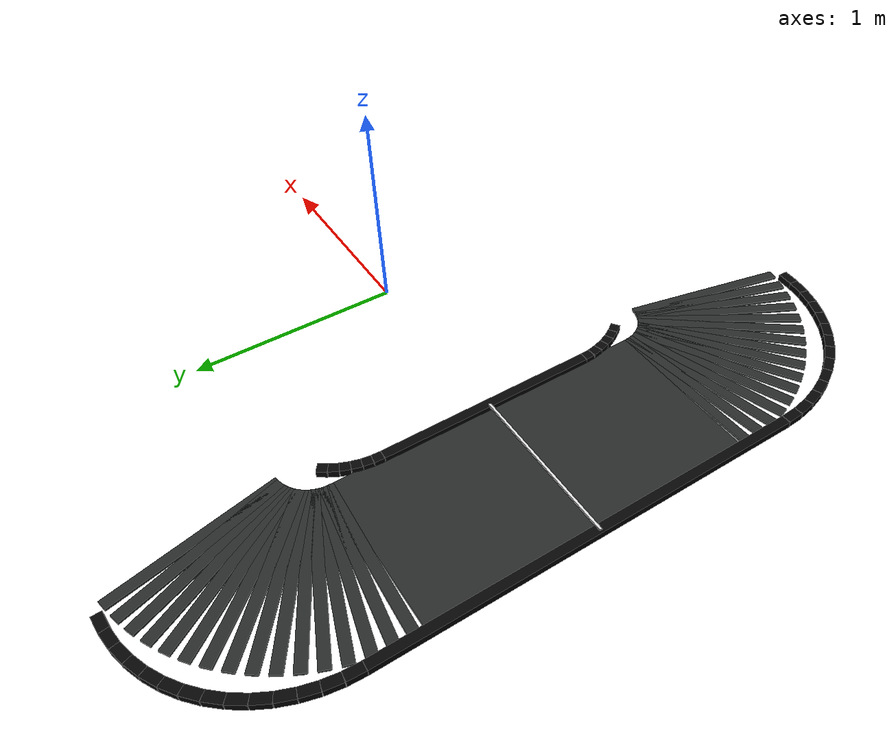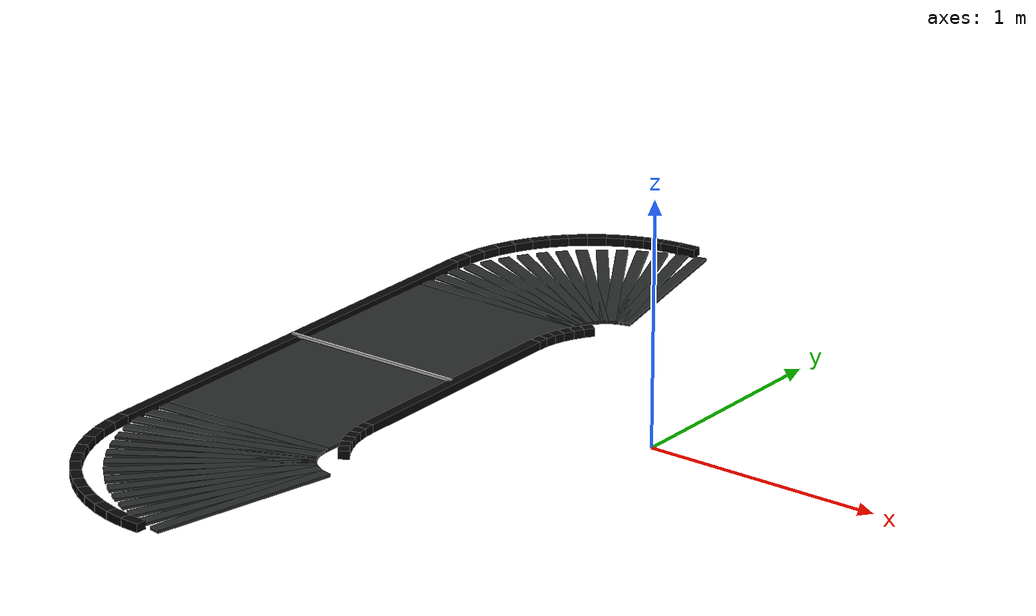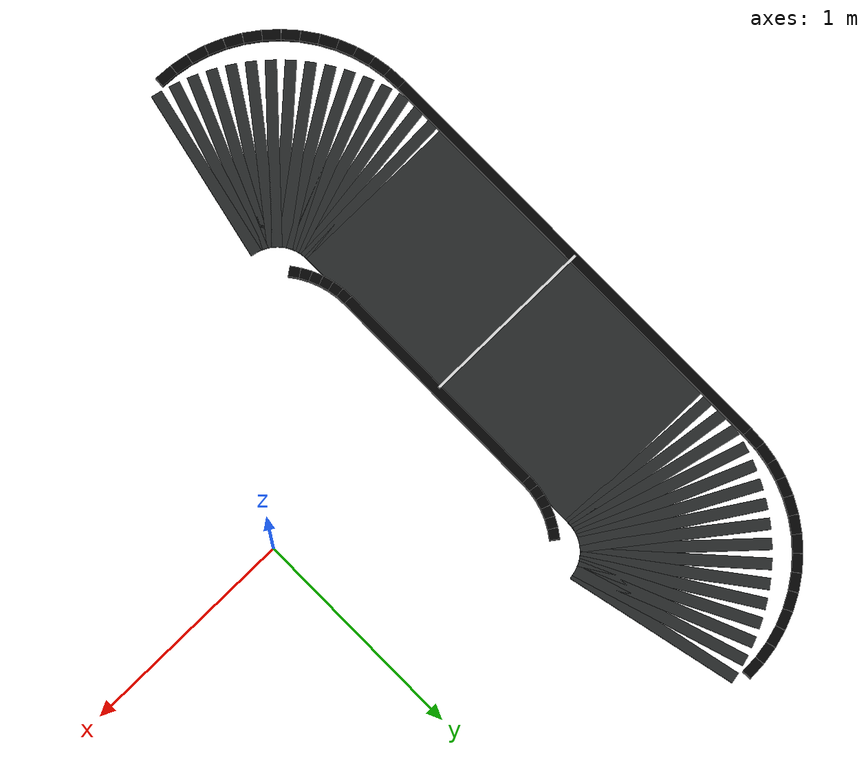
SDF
<sdf version="1.9">
 <world name="safe_city">
  <model name="road_surface_00">
   <static>true</static>
   <pose>-1.3489 -0.8048 0.0060 0 0 -1.52716</pose>
   <link name="link">
    <visual name="visual">
     <geometry><box><size>0.0497 0.8000 0.0120</size></box></geometry>
     <material><ambient>0.15 0.16 0.16 1</ambient><diffuse>0.15 0.16 0.16 1</diffuse></material>
    </visual>
   </link>
  </model>
  <model name="road_surface_01">
   <static>true</static>
   <pose>-1.3446 -0.8543 0.0060 0 0 -1.43990</pose>
   <link name="link">
    <visual name="visual">
     <geometry><box><size>0.0497 0.8000 0.0120</size></box></geometry>
     <material><ambient>0.15 0.16 0.16 1</ambient><diffuse>0.15 0.16 0.16 1</diffuse></material>
    </visual>
   </link>
  </model>
  <model name="road_surface_02">
   <static>true</static>
   <pose>-1.3360 -0.9033 0.0060 0 0 -1.35263</pose>
   <link name="link">
    <visual name="visual">
     <geometry><box><size>0.0497 0.8000 0.0120</size></box></geometry>
     <material><ambient>0.15 0.16 0.16 1</ambient><diffuse>0.15 0.16 0.16 1</diffuse></material>
    </visual>
   </link>
  </model>
  <model name="road_surface_03">
   <static>true</static>
   <pose>-1.3231 -0.9512 0.0060 0 0 -1.26536</pose>
   <link name="link">
    <visual name="visual">
     <geometry><box><size>0.0497 0.8000 0.0120</size></box></geometry>
     <material><ambient>0.15 0.16 0.16 1</ambient><diffuse>0.15 0.16 0.16 1</diffuse></material>
    </visual>
   </link>
  </model>
  <model name="road_surface_04">
   <static>true</static>
   <pose>-1.3061 -0.9979 0.0060 0 0 -1.17810</pose>
   <link name="link">
    <visual name="visual">
     <geometry><box><size>0.0497 0.8000 0.0120</size></box></geometry>
     <material><ambient>0.15 0.16 0.16 1</ambient><diffuse>0.15 0.16 0.16 1</diffuse></material>
    </visual>
   </link>
  </model>
  <model name="road_surface_05">
   <static>true</static>
   <pose>-1.2851 -1.0429 0.0060 0 0 -1.09083</pose>
   <link name="link">
    <visual name="visual">
     <geometry><box><size>0.0497 0.8000 0.0120</size></box></geometry>
     <material><ambient>0.15 0.16 0.16 1</ambient><diffuse>0.15 0.16 0.16 1</diffuse></material>
    </visual>
   </link>
  </model>
  <model name="road_surface_06">
   <static>true</static>
   <pose>-1.2603 -1.0860 0.0060 0 0 -1.00356</pose>
   <link name="link">
    <visual name="visual">
     <geometry><box><size>0.0497 0.8000 0.0120</size></box></geometry>
     <material><ambient>0.15 0.16 0.16 1</ambient><diffuse>0.15 0.16 0.16 1</diffuse></material>
    </visual>
   </link>
  </model>
  <model name="road_surface_07">
   <static>true</static>
   <pose>-1.2318 -1.1267 0.0060 0 0 -0.91630</pose>
   <link name="link">
    <visual name="visual">
     <geometry><box><size>0.0497 0.8000 0.0120</size></box></geometry>
     <material><ambient>0.15 0.16 0.16 1</ambient><diffuse>0.15 0.16 0.16 1</diffuse></material>
    </visual>
   </link>
  </model>
  <model name="road_surface_08">
   <static>true</static>
   <pose>-1.1998 -1.1647 0.0060 0 0 -0.82903</pose>
   <link name="link">
    <visual name="visual">
     <geometry><box><size>0.0497 0.8000 0.0120</size></box></geometry>
     <material><ambient>0.15 0.16 0.16 1</ambient><diffuse>0.15 0.16 0.16 1</diffuse></material>
    </visual>
   </link>
  </model>
  <model name="road_surface_09">
   <static>true</static>
   <pose>-1.1647 -1.1998 0.0060 0 0 -0.74176</pose>
   <link name="link">
    <visual name="visual">
     <geometry><box><size>0.0497 0.8000 0.0120</size></box></geometry>
     <material><ambient>0.15 0.16 0.16 1</ambient><diffuse>0.15 0.16 0.16 1</diffuse></material>
    </visual>
   </link>
  </model>
  <model name="road_surface_10">
   <static>true</static>
   <pose>-1.1267 -1.2318 0.0060 0 0 -0.65450</pose>
   <link name="link">
    <visual name="visual">
     <geometry><box><size>0.0497 0.8000 0.0120</size></box></geometry>
     <material><ambient>0.15 0.16 0.16 1</ambient><diffuse>0.15 0.16 0.16 1</diffuse></material>
    </visual>
   </link>
  </model>
  <model name="road_surface_11">
   <static>true</static>
   <pose>-1.0860 -1.2603 0.0060 0 0 -0.56723</pose>
   <link name="link">
    <visual name="visual">
     <geometry><box><size>0.0497 0.8000 0.0120</size></box></geometry>
     <material><ambient>0.15 0.16 0.16 1</ambient><diffuse>0.15 0.16 0.16 1</diffuse></material>
    </visual>
   </link>
  </model>
  <model name="road_surface_12">
   <static>true</static>
   <pose>-1.0429 -1.2851 0.0060 0 0 -0.47997</pose>
   <link name="link">
    <visual name="visual">
     <geometry><box><size>0.0497 0.8000 0.0120</size></box></geometry>
     <material><ambient>0.15 0.16 0.16 1</ambient><diffuse>0.15 0.16 0.16 1</diffuse></material>
    </visual>
   </link>
  </model>
  <model name="road_surface_13">
   <static>true</static>
   <pose>-0.9979 -1.3061 0.0060 0 0 -0.39270</pose>
   <link name="link">
    <visual name="visual">
     <geometry><box><size>0.0497 0.8000 0.0120</size></box></geometry>
     <material><ambient>0.15 0.16 0.16 1</ambient><diffuse>0.15 0.16 0.16 1</diffuse></material>
    </visual>
   </link>
  </model>
  <model name="road_surface_14">
   <static>true</static>
   <pose>-0.9512 -1.3231 0.0060 0 0 -0.30543</pose>
   <link name="link">
    <visual name="visual">
     <geometry><box><size>0.0497 0.8000 0.0120</size></box></geometry>
     <material><ambient>0.15 0.16 0.16 1</ambient><diffuse>0.15 0.16 0.16 1</diffuse></material>
    </visual>
   </link>
  </model>
  <model name="road_surface_15">
   <static>true</static>
   <pose>-0.9033 -1.3360 0.0060 0 0 -0.21817</pose>
   <link name="link">
    <visual name="visual">
     <geometry><box><size>0.0497 0.8000 0.0120</size></box></geometry>
     <material><ambient>0.15 0.16 0.16 1</ambient><diffuse>0.15 0.16 0.16 1</diffuse></material>
    </visual>
   </link>
  </model>
  <model name="road_surface_59">
   <static>true</static>
   <pose>-0.9033 1.3360 0.0060 0 0 -2.92343</pose>
   <link name="link">
    <visual name="visual">
     <geometry><box><size>0.0497 0.8000 0.0120</size></box></geometry>
     <material><ambient>0.15 0.16 0.16 1</ambient><diffuse>0.15 0.16 0.16 1</diffuse></material>
    </visual>
   </link>
  </model>
  <model name="road_surface_60">
   <static>true</static>
   <pose>-0.9512 1.3231 0.0060 0 0 -2.83616</pose>
   <link name="link">
    <visual name="visual">
     <geometry><box><size>0.0497 0.8000 0.0120</size></box></geometry>
     <material><ambient>0.15 0.16 0.16 1</ambient><diffuse>0.15 0.16 0.16 1</diffuse></material>
    </visual>
   </link>
  </model>
  <model name="road_surface_61">
   <static>true</static>
   <pose>-0.9979 1.3061 0.0060 0 0 -2.74889</pose>
   <link name="link">
    <visual name="visual">
     <geometry><box><size>0.0497 0.8000 0.0120</size></box></geometry>
     <material><ambient>0.15 0.16 0.16 1</ambient><diffuse>0.15 0.16 0.16 1</diffuse></material>
    </visual>
   </link>
  </model>
  <model name="road_surface_62">
   <static>true</static>
   <pose>-1.0429 1.2851 0.0060 0 0 -2.66163</pose>
   <link name="link">
    <visual name="visual">
     <geometry><box><size>0.0497 0.8000 0.0120</size></box></geometry>
     <material><ambient>0.15 0.16 0.16 1</ambient><diffuse>0.15 0.16 0.16 1</diffuse></material>
    </visual>
   </link>
  </model>
  <model name="road_surface_63">
   <static>true</static>
   <pose>-1.0860 1.2603 0.0060 0 0 -2.57436</pose>
   <link name="link">
    <visual name="visual">
     <geometry><box><size>0.0497 0.8000 0.0120</size></box></geometry>
     <material><ambient>0.15 0.16 0.16 1</ambient><diffuse>0.15 0.16 0.16 1</diffuse></material>
    </visual>
   </link>
  </model>
  <model name="road_surface_64">
   <static>true</static>
   <pose>-1.1267 1.2318 0.0060 0 0 -2.48709</pose>
   <link name="link">
    <visual name="visual">
     <geometry><box><size>0.0497 0.8000 0.0120</size></box></geometry>
     <material><ambient>0.15 0.16 0.16 1</ambient><diffuse>0.15 0.16 0.16 1</diffuse></material>
    </visual>
   </link>
  </model>
  <model name="road_surface_65">
   <static>true</static>
   <pose>-1.1647 1.1998 0.0060 0 0 -2.39983</pose>
   <link name="link">
    <visual name="visual">
     <geometry><box><size>0.0497 0.8000 0.0120</size></box></geometry>
     <material><ambient>0.15 0.16 0.16 1</ambient><diffuse>0.15 0.16 0.16 1</diffuse></material>
    </visual>
   </link>
  </model>
  <model name="road_surface_66">
   <static>true</static>
   <pose>-1.1998 1.1647 0.0060 0 0 -2.31256</pose>
   <link name="link">
    <visual name="visual">
     <geometry><box><size>0.0497 0.8000 0.0120</size></box></geometry>
     <material><ambient>0.15 0.16 0.16 1</ambient><diffuse>0.15 0.16 0.16 1</diffuse></material>
    </visual>
   </link>
  </model>
  <model name="road_surface_67">
   <static>true</static>
   <pose>-1.2318 1.1267 0.0060 0 0 -2.22529</pose>
   <link name="link">
    <visual name="visual">
     <geometry><box><size>0.0497 0.8000 0.0120</size></box></geometry>
     <material><ambient>0.15 0.16 0.16 1</ambient><diffuse>0.15 0.16 0.16 1</diffuse></material>
    </visual>
   </link>
  </model>
  <model name="road_surface_68">
   <static>true</static>
   <pose>-1.2603 1.0860 0.0060 0 0 -2.13803</pose>
   <link name="link">
    <visual name="visual">
     <geometry><box><size>0.0497 0.8000 0.0120</size></box></geometry>
     <material><ambient>0.15 0.16 0.16 1</ambient><diffuse>0.15 0.16 0.16 1</diffuse></material>
    </visual>
   </link>
  </model>
  <model name="road_surface_69">
   <static>true</static>
   <pose>-1.2851 1.0429 0.0060 0 0 -2.05076</pose>
   <link name="link">
    <visual name="visual">
     <geometry><box><size>0.0497 0.8000 0.0120</size></box></geometry>
     <material><ambient>0.15 0.16 0.16 1</ambient><diffuse>0.15 0.16 0.16 1</diffuse></material>
    </visual>
   </link>
  </model>
  <model name="road_surface_70">
   <static>true</static>
   <pose>-1.3061 0.9979 0.0060 0 0 -1.96350</pose>
   <link name="link">
    <visual name="visual">
     <geometry><box><size>0.0497 0.8000 0.0120</size></box></geometry>
     <material><ambient>0.15 0.16 0.16 1</ambient><diffuse>0.15 0.16 0.16 1</diffuse></material>
    </visual>
   </link>
  </model>
  <model name="road_surface_71">
   <static>true</static>
   <pose>-1.3231 0.9512 0.0060 0 0 -1.87623</pose>
   <link name="link">
    <visual name="visual">
     <geometry><box><size>0.0497 0.8000 0.0120</size></box></geometry>
     <material><ambient>0.15 0.16 0.16 1</ambient><diffuse>0.15 0.16 0.16 1</diffuse></material>
    </visual>
   </link>
  </model>
  <model name="road_surface_72">
   <static>true</static>
   <pose>-1.3360 0.9033 0.0060 0 0 -1.78896</pose>
   <link name="link">
    <visual name="visual">
     <geometry><box><size>0.0497 0.8000 0.0120</size></box></geometry>
     <material><ambient>0.15 0.16 0.16 1</ambient><diffuse>0.15 0.16 0.16 1</diffuse></material>
    </visual>
   </link>
  </model>
  <model name="road_surface_73">
   <static>true</static>
   <pose>-1.3446 0.8543 0.0060 0 0 -1.70170</pose>
   <link name="link">
    <visual name="visual">
     <geometry><box><size>0.0497 0.8000 0.0120</size></box></geometry>
     <material><ambient>0.15 0.16 0.16 1</ambient><diffuse>0.15 0.16 0.16 1</diffuse></material>
    </visual>
   </link>
  </model>
  <model name="road_surface_74">
   <static>true</static>
   <pose>-1.3489 0.8048 0.0060 0 0 -1.61443</pose>
   <link name="link">
    <visual name="visual">
     <geometry><box><size>0.0497 0.8000 0.0120</size></box></geometry>
     <material><ambient>0.15 0.16 0.16 1</ambient><diffuse>0.15 0.16 0.16 1</diffuse></material>
    </visual>
   </link>
  </model>
  <model name="road_surface_75">
   <static>true</static>
   <pose>-1.3500 0.0000 0.0060 0 0 -1.57080</pose>
   <link name="link">
    <visual name="visual">
     <geometry><box><size>1.5600 0.8000 0.0120</size></box></geometry>
     <material><ambient>0.15 0.16 0.16 1</ambient><diffuse>0.15 0.16 0.16 1</diffuse></material>
    </visual>
   </link>
  </model>
  <model name="outer_black_line_00">
   <static>true</static>
   <pose>-1.7477 -1.0703 0.0175 0 0 -1.51470</pose>
   <link name="link">
    <collision name="collision"><geometry><box><size>0.0807 0.0450 0.0350</size></box></geometry></collision>
    <visual name="visual">
     <geometry><box><size>0.0807 0.0450 0.0350</size></box></geometry>
     <material><ambient>0.02 0.02 0.02 1</ambient><diffuse>0.02 0.02 0.02 1</diffuse></material>
    </visual>
   </link>
  </model>
  <model name="outer_black_line_01">
   <static>true</static>
   <pose>-1.7387 -1.1504 0.0175 0 0 -1.40250</pose>
   <link name="link">
    <collision name="collision"><geometry><box><size>0.0807 0.0450 0.0350</size></box></geometry></collision>
    <visual name="visual">
     <geometry><box><size>0.0807 0.0450 0.0350</size></box></geometry>
     <material><ambient>0.02 0.02 0.02 1</ambient><diffuse>0.02 0.02 0.02 1</diffuse></material>
    </visual>
   </link>
  </model>
  <model name="outer_black_line_02">
   <static>true</static>
   <pose>-1.7208 -1.2290 0.0175 0 0 -1.29030</pose>
   <link name="link">
    <collision name="collision"><geometry><box><size>0.0807 0.0450 0.0350</size></box></geometry></collision>
    <visual name="visual">
     <geometry><box><size>0.0807 0.0450 0.0350</size></box></geometry>
     <material><ambient>0.02 0.02 0.02 1</ambient><diffuse>0.02 0.02 0.02 1</diffuse></material>
    </visual>
   </link>
  </model>
  <model name="outer_black_line_03">
   <static>true</static>
   <pose>-1.6941 -1.3051 0.0175 0 0 -1.17810</pose>
   <link name="link">
    <collision name="collision"><geometry><box><size>0.0807 0.0450 0.0350</size></box></geometry></collision>
    <visual name="visual">
     <geometry><box><size>0.0807 0.0450 0.0350</size></box></geometry>
     <material><ambient>0.02 0.02 0.02 1</ambient><diffuse>0.02 0.02 0.02 1</diffuse></material>
    </visual>
   </link>
  </model>
  <model name="outer_black_line_04">
   <static>true</static>
   <pose>-1.6592 -1.3777 0.0175 0 0 -1.06590</pose>
   <link name="link">
    <collision name="collision"><geometry><box><size>0.0807 0.0450 0.0350</size></box></geometry></collision>
    <visual name="visual">
     <geometry><box><size>0.0807 0.0450 0.0350</size></box></geometry>
     <material><ambient>0.02 0.02 0.02 1</ambient><diffuse>0.02 0.02 0.02 1</diffuse></material>
    </visual>
   </link>
  </model>
  <model name="outer_black_line_05">
   <static>true</static>
   <pose>-1.6163 -1.4460 0.0175 0 0 -0.95370</pose>
   <link name="link">
    <collision name="collision"><geometry><box><size>0.0807 0.0450 0.0350</size></box></geometry></collision>
    <visual name="visual">
     <geometry><box><size>0.0807 0.0450 0.0350</size></box></geometry>
     <material><ambient>0.02 0.02 0.02 1</ambient><diffuse>0.02 0.02 0.02 1</diffuse></material>
    </visual>
   </link>
  </model>
  <model name="outer_black_line_06">
   <static>true</static>
   <pose>-1.5660 -1.5090 0.0175 0 0 -0.84150</pose>
   <link name="link">
    <collision name="collision"><geometry><box><size>0.0807 0.0450 0.0350</size></box></geometry></collision>
    <visual name="visual">
     <geometry><box><size>0.0807 0.0450 0.0350</size></box></geometry>
     <material><ambient>0.02 0.02 0.02 1</ambient><diffuse>0.02 0.02 0.02 1</diffuse></material>
    </visual>
   </link>
  </model>
  <model name="outer_black_line_07">
   <static>true</static>
   <pose>-1.5090 -1.5660 0.0175 0 0 -0.72930</pose>
   <link name="link">
    <collision name="collision"><geometry><box><size>0.0807 0.0450 0.0350</size></box></geometry></collision>
    <visual name="visual">
     <geometry><box><size>0.0807 0.0450 0.0350</size></box></geometry>
     <material><ambient>0.02 0.02 0.02 1</ambient><diffuse>0.02 0.02 0.02 1</diffuse></material>
    </visual>
   </link>
  </model>
  <model name="outer_black_line_08">
   <static>true</static>
   <pose>-1.4460 -1.6163 0.0175 0 0 -0.61710</pose>
   <link name="link">
    <collision name="collision"><geometry><box><size>0.0807 0.0450 0.0350</size></box></geometry></collision>
    <visual name="visual">
     <geometry><box><size>0.0807 0.0450 0.0350</size></box></geometry>
     <material><ambient>0.02 0.02 0.02 1</ambient><diffuse>0.02 0.02 0.02 1</diffuse></material>
    </visual>
   </link>
  </model>
  <model name="outer_black_line_09">
   <static>true</static>
   <pose>-1.3777 -1.6592 0.0175 0 0 -0.50490</pose>
   <link name="link">
    <collision name="collision"><geometry><box><size>0.0807 0.0450 0.0350</size></box></geometry></collision>
    <visual name="visual">
     <geometry><box><size>0.0807 0.0450 0.0350</size></box></geometry>
     <material><ambient>0.02 0.02 0.02 1</ambient><diffuse>0.02 0.02 0.02 1</diffuse></material>
    </visual>
   </link>
  </model>
  <model name="outer_black_line_10">
   <static>true</static>
   <pose>-1.3051 -1.6941 0.0175 0 0 -0.39270</pose>
   <link name="link">
    <collision name="collision"><geometry><box><size>0.0807 0.0450 0.0350</size></box></geometry></collision>
    <visual name="visual">
     <geometry><box><size>0.0807 0.0450 0.0350</size></box></geometry>
     <material><ambient>0.02 0.02 0.02 1</ambient><diffuse>0.02 0.02 0.02 1</diffuse></material>
    </visual>
   </link>
  </model>
  <model name="outer_black_line_11">
   <static>true</static>
   <pose>-1.2290 -1.7208 0.0175 0 0 -0.28050</pose>
   <link name="link">
    <collision name="collision"><geometry><box><size>0.0807 0.0450 0.0350</size></box></geometry></collision>
    <visual name="visual">
     <geometry><box><size>0.0807 0.0450 0.0350</size></box></geometry>
     <material><ambient>0.02 0.02 0.02 1</ambient><diffuse>0.02 0.02 0.02 1</diffuse></material>
    </visual>
   </link>
  </model>
  <model name="outer_black_line_12">
   <static>true</static>
   <pose>-1.1504 -1.7387 0.0175 0 0 -0.16830</pose>
   <link name="link">
    <collision name="collision"><geometry><box><size>0.0807 0.0450 0.0350</size></box></geometry></collision>
    <visual name="visual">
     <geometry><box><size>0.0807 0.0450 0.0350</size></box></geometry>
     <material><ambient>0.02 0.02 0.02 1</ambient><diffuse>0.02 0.02 0.02 1</diffuse></material>
    </visual>
   </link>
  </model>
  <model name="outer_black_line_13">
   <static>true</static>
   <pose>-1.0703 -1.7477 0.0175 0 0 -0.05610</pose>
   <link name="link">
    <collision name="collision"><geometry><box><size>0.0807 0.0450 0.0350</size></box></geometry></collision>
    <visual name="visual">
     <geometry><box><size>0.0807 0.0450 0.0350</size></box></geometry>
     <material><ambient>0.02 0.02 0.02 1</ambient><diffuse>0.02 0.02 0.02 1</diffuse></material>
    </visual>
   </link>
  </model>
  <model name="outer_black_line_45">
   <static>true</static>
   <pose>-1.0703 1.7477 0.0175 0 0 -3.08549</pose>
   <link name="link">
    <collision name="collision"><geometry><box><size>0.0807 0.0450 0.0350</size></box></geometry></collision>
    <visual name="visual">
     <geometry><box><size>0.0807 0.0450 0.0350</size></box></geometry>
     <material><ambient>0.02 0.02 0.02 1</ambient><diffuse>0.02 0.02 0.02 1</diffuse></material>
    </visual>
   </link>
  </model>
  <model name="outer_black_line_46">
   <static>true</static>
   <pose>-1.1504 1.7387 0.0175 0 0 -2.97329</pose>
   <link name="link">
    <collision name="collision"><geometry><box><size>0.0807 0.0450 0.0350</size></box></geometry></collision>
    <visual name="visual">
     <geometry><box><size>0.0807 0.0450 0.0350</size></box></geometry>
     <material><ambient>0.02 0.02 0.02 1</ambient><diffuse>0.02 0.02 0.02 1</diffuse></material>
    </visual>
   </link>
  </model>
  <model name="outer_black_line_47">
   <static>true</static>
   <pose>-1.2290 1.7208 0.0175 0 0 -2.86109</pose>
   <link name="link">
    <collision name="collision"><geometry><box><size>0.0807 0.0450 0.0350</size></box></geometry></collision>
    <visual name="visual">
     <geometry><box><size>0.0807 0.0450 0.0350</size></box></geometry>
     <material><ambient>0.02 0.02 0.02 1</ambient><diffuse>0.02 0.02 0.02 1</diffuse></material>
    </visual>
   </link>
  </model>
  <model name="outer_black_line_48">
   <static>true</static>
   <pose>-1.3051 1.6941 0.0175 0 0 -2.74889</pose>
   <link name="link">
    <collision name="collision"><geometry><box><size>0.0807 0.0450 0.0350</size></box></geometry></collision>
    <visual name="visual">
     <geometry><box><size>0.0807 0.0450 0.0350</size></box></geometry>
     <material><ambient>0.02 0.02 0.02 1</ambient><diffuse>0.02 0.02 0.02 1</diffuse></material>
    </visual>
   </link>
  </model>
  <model name="outer_black_line_49">
   <static>true</static>
   <pose>-1.3777 1.6592 0.0175 0 0 -2.63669</pose>
   <link name="link">
    <collision name="collision"><geometry><box><size>0.0807 0.0450 0.0350</size></box></geometry></collision>
    <visual name="visual">
     <geometry><box><size>0.0807 0.0450 0.0350</size></box></geometry>
     <material><ambient>0.02 0.02 0.02 1</ambient><diffuse>0.02 0.02 0.02 1</diffuse></material>
    </visual>
   </link>
  </model>
  <model name="outer_black_line_50">
   <static>true</static>
   <pose>-1.4460 1.6163 0.0175 0 0 -2.52449</pose>
   <link name="link">
    <collision name="collision"><geometry><box><size>0.0807 0.0450 0.0350</size></box></geometry></collision>
    <visual name="visual">
     <geometry><box><size>0.0807 0.0450 0.0350</size></box></geometry>
     <material><ambient>0.02 0.02 0.02 1</ambient><diffuse>0.02 0.02 0.02 1</diffuse></material>
    </visual>
   </link>
  </model>
  <model name="outer_black_line_51">
   <static>true</static>
   <pose>-1.5090 1.5660 0.0175 0 0 -2.41229</pose>
   <link name="link">
    <collision name="collision"><geometry><box><size>0.0807 0.0450 0.0350</size></box></geometry></collision>
    <visual name="visual">
     <geometry><box><size>0.0807 0.0450 0.0350</size></box></geometry>
     <material><ambient>0.02 0.02 0.02 1</ambient><diffuse>0.02 0.02 0.02 1</diffuse></material>
    </visual>
   </link>
  </model>
  <model name="outer_black_line_52">
   <static>true</static>
   <pose>-1.5660 1.5090 0.0175 0 0 -2.30009</pose>
   <link name="link">
    <collision name="collision"><geometry><box><size>0.0807 0.0450 0.0350</size></box></geometry></collision>
    <visual name="visual">
     <geometry><box><size>0.0807 0.0450 0.0350</size></box></geometry>
     <material><ambient>0.02 0.02 0.02 1</ambient><diffuse>0.02 0.02 0.02 1</diffuse></material>
    </visual>
   </link>
  </model>
  <model name="outer_black_line_53">
   <static>true</static>
   <pose>-1.6163 1.4460 0.0175 0 0 -2.18789</pose>
   <link name="link">
    <collision name="collision"><geometry><box><size>0.0807 0.0450 0.0350</size></box></geometry></collision>
    <visual name="visual">
     <geometry><box><size>0.0807 0.0450 0.0350</size></box></geometry>
     <material><ambient>0.02 0.02 0.02 1</ambient><diffuse>0.02 0.02 0.02 1</diffuse></material>
    </visual>
   </link>
  </model>
  <model name="outer_black_line_54">
   <static>true</static>
   <pose>-1.6592 1.3777 0.0175 0 0 -2.07570</pose>
   <link name="link">
    <collision name="collision"><geometry><box><size>0.0807 0.0450 0.0350</size></box></geometry></collision>
    <visual name="visual">
     <geometry><box><size>0.0807 0.0450 0.0350</size></box></geometry>
     <material><ambient>0.02 0.02 0.02 1</ambient><diffuse>0.02 0.02 0.02 1</diffuse></material>
    </visual>
   </link>
  </model>
  <model name="outer_black_line_55">
   <static>true</static>
   <pose>-1.6941 1.3051 0.0175 0 0 -1.96350</pose>
   <link name="link">
    <collision name="collision"><geometry><box><size>0.0807 0.0450 0.0350</size></box></geometry></collision>
    <visual name="visual">
     <geometry><box><size>0.0807 0.0450 0.0350</size></box></geometry>
     <material><ambient>0.02 0.02 0.02 1</ambient><diffuse>0.02 0.02 0.02 1</diffuse></material>
    </visual>
   </link>
  </model>
  <model name="outer_black_line_56">
   <static>true</static>
   <pose>-1.7208 1.2290 0.0175 0 0 -1.85130</pose>
   <link name="link">
    <collision name="collision"><geometry><box><size>0.0807 0.0450 0.0350</size></box></geometry></collision>
    <visual name="visual">
     <geometry><box><size>0.0807 0.0450 0.0350</size></box></geometry>
     <material><ambient>0.02 0.02 0.02 1</ambient><diffuse>0.02 0.02 0.02 1</diffuse></material>
    </visual>
   </link>
  </model>
  <model name="outer_black_line_57">
   <static>true</static>
   <pose>-1.7387 1.1504 0.0175 0 0 -1.73910</pose>
   <link name="link">
    <collision name="collision"><geometry><box><size>0.0807 0.0450 0.0350</size></box></geometry></collision>
    <visual name="visual">
     <geometry><box><size>0.0807 0.0450 0.0350</size></box></geometry>
     <material><ambient>0.02 0.02 0.02 1</ambient><diffuse>0.02 0.02 0.02 1</diffuse></material>
    </visual>
   </link>
  </model>
  <model name="outer_black_line_58">
   <static>true</static>
   <pose>-1.7477 1.0703 0.0175 0 0 -1.62690</pose>
   <link name="link">
    <collision name="collision"><geometry><box><size>0.0807 0.0450 0.0350</size></box></geometry></collision>
    <visual name="visual">
     <geometry><box><size>0.0807 0.0450 0.0350</size></box></geometry>
     <material><ambient>0.02 0.02 0.02 1</ambient><diffuse>0.02 0.02 0.02 1</diffuse></material>
    </visual>
   </link>
  </model>
  <model name="outer_black_line_59">
   <static>true</static>
   <pose>-1.7500 0.0000 0.0175 0 0 -1.57080</pose>
   <link name="link">
    <collision name="collision"><geometry><box><size>2.0600 0.0450 0.0350</size></box></geometry></collision>
    <visual name="visual">
     <geometry><box><size>2.0600 0.0450 0.0350</size></box></geometry>
     <material><ambient>0.02 0.02 0.02 1</ambient><diffuse>0.02 0.02 0.02 1</diffuse></material>
    </visual>
   </link>
  </model>
  <model name="inner_black_line_00">
   <static>true</static>
   <pose>-0.9487 -0.5535 0.0175 0 0 -1.51470</pose>
   <link name="link">
    <collision name="collision"><geometry><box><size>0.0471 0.0450 0.0350</size></box></geometry></collision>
    <visual name="visual">
     <geometry><box><size>0.0471 0.0450 0.0350</size></box></geometry>
     <material><ambient>0.02 0.02 0.02 1</ambient><diffuse>0.02 0.02 0.02 1</diffuse></material>
    </visual>
   </link>
  </model>
  <model name="inner_black_line_01">
   <static>true</static>
   <pose>-0.9434 -0.6002 0.0175 0 0 -1.40250</pose>
   <link name="link">
    <collision name="collision"><geometry><box><size>0.0471 0.0450 0.0350</size></box></geometry></collision>
    <visual name="visual">
     <geometry><box><size>0.0471 0.0450 0.0350</size></box></geometry>
     <material><ambient>0.02 0.02 0.02 1</ambient><diffuse>0.02 0.02 0.02 1</diffuse></material>
    </visual>
   </link>
  </model>
  <model name="inner_black_line_02">
   <static>true</static>
   <pose>-0.9330 -0.6461 0.0175 0 0 -1.29030</pose>
   <link name="link">
    <collision name="collision"><geometry><box><size>0.0471 0.0450 0.0350</size></box></geometry></collision>
    <visual name="visual">
     <geometry><box><size>0.0471 0.0450 0.0350</size></box></geometry>
     <material><ambient>0.02 0.02 0.02 1</ambient><diffuse>0.02 0.02 0.02 1</diffuse></material>
    </visual>
   </link>
  </model>
  <model name="inner_black_line_03">
   <static>true</static>
   <pose>-0.9174 -0.6905 0.0175 0 0 -1.17810</pose>
   <link name="link">
    <collision name="collision"><geometry><box><size>0.0471 0.0450 0.0350</size></box></geometry></collision>
    <visual name="visual">
     <geometry><box><size>0.0471 0.0450 0.0350</size></box></geometry>
     <material><ambient>0.02 0.02 0.02 1</ambient><diffuse>0.02 0.02 0.02 1</diffuse></material>
    </visual>
   </link>
  </model>
  <model name="inner_black_line_04">
   <static>true</static>
   <pose>-0.8970 -0.7328 0.0175 0 0 -1.06590</pose>
   <link name="link">
    <collision name="collision"><geometry><box><size>0.0471 0.0450 0.0350</size></box></geometry></collision>
    <visual name="visual">
     <geometry><box><size>0.0471 0.0450 0.0350</size></box></geometry>
     <material><ambient>0.02 0.02 0.02 1</ambient><diffuse>0.02 0.02 0.02 1</diffuse></material>
    </visual>
   </link>
  </model>
  <model name="inner_black_line_05">
   <static>true</static>
   <pose>-0.8720 -0.7727 0.0175 0 0 -0.95370</pose>
   <link name="link">
    <collision name="collision"><geometry><box><size>0.0471 0.0450 0.0350</size></box></geometry></collision>
    <visual name="visual">
     <geometry><box><size>0.0471 0.0450 0.0350</size></box></geometry>
     <material><ambient>0.02 0.02 0.02 1</ambient><diffuse>0.02 0.02 0.02 1</diffuse></material>
    </visual>
   </link>
  </model>
  <model name="inner_black_line_53">
   <static>true</static>
   <pose>-0.8720 0.7727 0.0175 0 0 -2.18789</pose>
   <link name="link">
    <collision name="collision"><geometry><box><size>0.0471 0.0450 0.0350</size></box></geometry></collision>
    <visual name="visual">
     <geometry><box><size>0.0471 0.0450 0.0350</size></box></geometry>
     <material><ambient>0.02 0.02 0.02 1</ambient><diffuse>0.02 0.02 0.02 1</diffuse></material>
    </visual>
   </link>
  </model>
  <model name="inner_black_line_54">
   <static>true</static>
   <pose>-0.8970 0.7328 0.0175 0 0 -2.07570</pose>
   <link name="link">
    <collision name="collision"><geometry><box><size>0.0471 0.0450 0.0350</size></box></geometry></collision>
    <visual name="visual">
     <geometry><box><size>0.0471 0.0450 0.0350</size></box></geometry>
     <material><ambient>0.02 0.02 0.02 1</ambient><diffuse>0.02 0.02 0.02 1</diffuse></material>
    </visual>
   </link>
  </model>
  <model name="inner_black_line_55">
   <static>true</static>
   <pose>-0.9174 0.6905 0.0175 0 0 -1.96350</pose>
   <link name="link">
    <collision name="collision"><geometry><box><size>0.0471 0.0450 0.0350</size></box></geometry></collision>
    <visual name="visual">
     <geometry><box><size>0.0471 0.0450 0.0350</size></box></geometry>
     <material><ambient>0.02 0.02 0.02 1</ambient><diffuse>0.02 0.02 0.02 1</diffuse></material>
    </visual>
   </link>
  </model>
  <model name="inner_black_line_56">
   <static>true</static>
   <pose>-0.9330 0.6461 0.0175 0 0 -1.85130</pose>
   <link name="link">
    <collision name="collision"><geometry><box><size>0.0471 0.0450 0.0350</size></box></geometry></collision>
    <visual name="visual">
     <geometry><box><size>0.0471 0.0450 0.0350</size></box></geometry>
     <material><ambient>0.02 0.02 0.02 1</ambient><diffuse>0.02 0.02 0.02 1</diffuse></material>
    </visual>
   </link>
  </model>
  <model name="inner_black_line_57">
   <static>true</static>
   <pose>-0.9434 0.6002 0.0175 0 0 -1.73910</pose>
   <link name="link">
    <collision name="collision"><geometry><box><size>0.0471 0.0450 0.0350</size></box></geometry></collision>
    <visual name="visual">
     <geometry><box><size>0.0471 0.0450 0.0350</size></box></geometry>
     <material><ambient>0.02 0.02 0.02 1</ambient><diffuse>0.02 0.02 0.02 1</diffuse></material>
    </visual>
   </link>
  </model>
  <model name="inner_black_line_58">
   <static>true</static>
   <pose>-0.9487 0.5535 0.0175 0 0 -1.62690</pose>
   <link name="link">
    <collision name="collision"><geometry><box><size>0.0471 0.0450 0.0350</size></box></geometry></collision>
    <visual name="visual">
     <geometry><box><size>0.0471 0.0450 0.0350</size></box></geometry>
     <material><ambient>0.02 0.02 0.02 1</ambient><diffuse>0.02 0.02 0.02 1</diffuse></material>
    </visual>
   </link>
  </model>
  <model name="inner_black_line_59">
   <static>true</static>
   <pose>-0.9500 0.0000 0.0175 0 0 -1.57080</pose>
   <link name="link">
    <collision name="collision"><geometry><box><size>1.0600 0.0450 0.0350</size></box></geometry></collision>
    <visual name="visual">
     <geometry><box><size>1.0600 0.0450 0.0350</size></box></geometry>
     <material><ambient>0.02 0.02 0.02 1</ambient><diffuse>0.02 0.02 0.02 1</diffuse></material>
    </visual>
   </link>
  </model>
  <model name="left_800mm_dimension_line">
   <static>true</static>
   <pose>-1.36 0 0.035 0 0 0</pose>
   <link name="link">
    <visual name="visual">
     <geometry><box><size>0.80 0.012 0.012</size></box></geometry>
     <material><ambient>0.86 0.86 0.86 1</ambient><diffuse>0.86 0.86 0.86 1</diffuse></material>
    </visual>
   </link>
  </model>
 </world>
</sdf>
